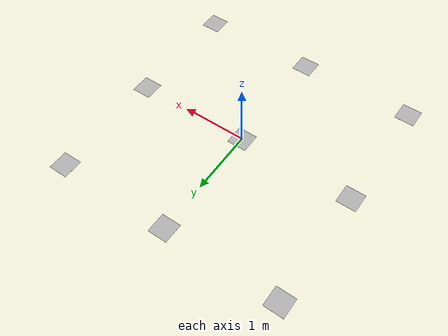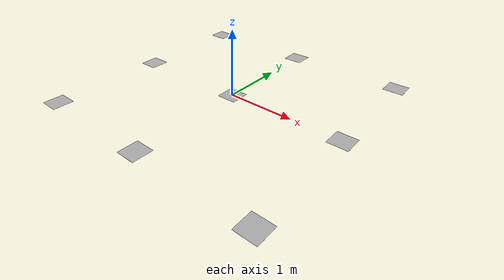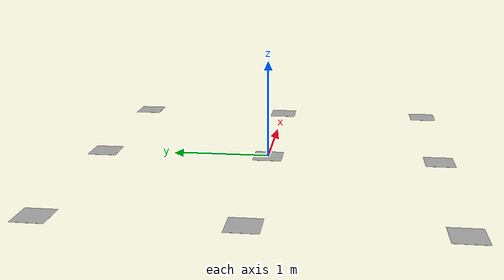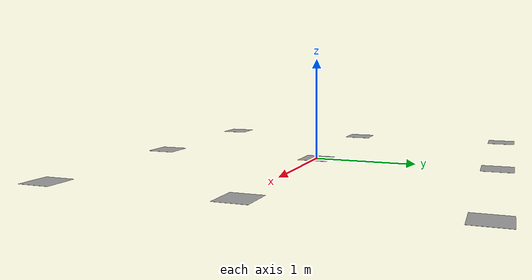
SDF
<?xml version="1.0"?>
<sdf version="1.4">
  <model name="qr_code">

   <link name="qr_code_0">
      <pose>0 0 0 0 0 0</pose>
      <collision name="collision">
        <geometry>
            <box>
            <size>0.2968625 0.2968625 0.001</size>
          </box>
        </geometry>
      </collision>
      <visual name="visual">
        <geometry>
          <box>
            <size>0.2968625 0.2968625 0.001</size>
          </box>
        </geometry>
        <material>
		  <script>
            <uri>model://qr_code_laboratorio/materials/scripts/qr_code_0.material</uri>
            <uri>model://qr_code_laboratorio/materials/textures/qr_code_0.png</uri>
            <name>qr_code_0/Image</name>
          </script>
        </material>
      </visual>
    </link>

    <link name="qr_code 1">
      <pose>1.75 0 0 0 0 0</pose>
      <collision name="collision">
        <geometry>
            <box>
            <size>0.2968625 0.2968625 0.001</size>
          </box>
        </geometry>
      </collision>
      <visual name="visual">
        <geometry>
          <box>
            <size>0.2968625 0.2968625 0.001</size>
          </box>
        </geometry>
        <material>
		  <script>
            <uri>model://qr_code_laboratorio/materials/scripts/qr_code_1.material</uri>
            <uri>model://qr_code_laboratorio/materials/textures/qr_code_1.png</uri>
            <name>qr_code_1/Image</name>
          </script>
        </material>
      </visual>
    </link>

    <link name="qr_code 2">
      <pose>1.75 1.75 0 0 0 0</pose>
      <collision name="collision">
        <geometry>
            <box>
            <size>0.2968625 0.2968625 0.001</size>
          </box>
        </geometry>
      </collision>
      <visual name="visual">
        <geometry>
          <box>
            <size>0.2968625 0.2968625 0.001</size>
          </box>
        </geometry>
        <material>
		  <script>
            <uri>model://qr_code_laboratorio/materials/scripts/qr_code_2.material</uri>
            <uri>model://qr_code_laboratorio/materials/textures/qr_code_2.png</uri>
            <name>qr_code_2/Image</name>
          </script>
        </material>
      </visual>
    </link>

    <link name="qr_code_3">
      <pose>0 1.75 0 0 0 0</pose>
      <collision name="collision">
        <geometry>
            <box>
            <size>0.2968625 0.2968625 0.001</size>
          </box>
        </geometry>
      </collision>
      <visual name="visual">
        <geometry>
          <box>
            <size>0.2968625 0.2968625 0.001</size>
          </box>
        </geometry>
        <material>
		  <script>
            <uri>model://qr_code_laboratorio/materials/scripts/qr_code_3.material</uri>
            <uri>model://qr_code_laboratorio/materials/textures/qr_code_3.png</uri>
            <name>qr_code_3/Image</name>
          </script>
        </material>
      </visual>
    </link>

    <link name="qr_code 4">
      <pose>-1.75 1.75 0 0 0 0</pose>
      <collision name="collision">
        <geometry>
            <box>
            <size>0.2968625 0.2968625 0.001</size>
          </box>
        </geometry>
      </collision>
      <visual name="visual">
        <geometry>
          <box>
            <size>0.2968625 0.2968625 0.001</size>
          </box>
        </geometry>
        <material>
		  <script>
            <uri>model://qr_code_laboratorio/materials/scripts/qr_code_4.material</uri>
            <uri>model://qr_code_laboratorio/materials/textures/qr_code_4.png</uri>
            <name>qr_code_4/Image</name>
          </script>
        </material>
      </visual>
	</link>

	<link name="qr_code_5">
      <pose>-1.75 0 0 0 0 0</pose>
      <collision name="collision">
        <geometry>
            <box>
            <size>0.2968625 0.2968625 0.001</size>
          </box>
        </geometry>
      </collision>
      <visual name="visual">
        <geometry>
          <box>
            <size>0.2968625 0.2968625 0.001</size>
          </box>
        </geometry>
        <material>
		  <script>
            <uri>model://qr_code_laboratorio/materials/scripts/qr_code_5.material</uri>
            <uri>model://qr_code_laboratorio/materials/textures/qr_code_5.png</uri>
            <name>qr_code_5/Image</name>
          </script>
        </material>
      </visual>
    </link>

	<link name="qr_code 6">
      <pose>-1.75 -1.75 0 0 0 0</pose>
      <collision name="collision">
        <geometry>
            <box>
            <size>0.2968625 0.2968625 0.001</size>
          </box>
        </geometry>
      </collision>
      <visual name="visual">
        <geometry>
          <box>
            <size>0.2968625 0.2968625 0.001</size>
          </box>
        </geometry>
        <material>
		  <script>
            <uri>model://qr_code_laboratorio/materials/scripts/qr_code_6.material</uri>
            <uri>model://qr_code_laboratorio/materials/textures/qr_code_6.png</uri>
            <name>qr_code_6/Image</name>
          </script>
        </material>
      </visual>
    </link>

    <link name="qr_code_7">
      <pose>0 -1.75 0 0 0 0</pose>
      <collision name="collision">
        <geometry>
            <box>
            <size>0.2968625 0.2968625 0.001</size>
          </box>
        </geometry>
      </collision>
      <visual name="visual">
        <geometry>
          <box>
            <size>0.2968625 0.2968625 0.001</size>
          </box>
        </geometry>
        <material>
		  <script>
            <uri>model://qr_code_laboratorio/materials/scripts/qr_code_7.material</uri>
            <uri>model://qr_code_laboratorio/materials/textures/qr_code_7.png</uri>
            <name>qr_code_7/Image</name>
          </script>
        </material>
      </visual>
    </link>

    <link name="qr_code 8">
      <pose>1.75 -1.75 0 0 0 0</pose>
      <collision name="collision">
        <geometry>
            <box>
            <size>0.2968625 0.2968625 0.001</size>
          </box>
        </geometry>
      </collision>
      <visual name="visual">
        <geometry>
          <box>
            <size>0.2968625 0.2968625 0.001</size>
          </box>
        </geometry>
        <material>
		  <script>
            <uri>model://qr_code_laboratorio/materials/scripts/qr_code_8.material</uri>
            <uri>model://qr_code_laboratorio/materials/textures/qr_code_8.png</uri>
            <name>qr_code_8/Image</name>
          </script>
        </material>
      </visual>
    </link>

  </model>
</sdf>
